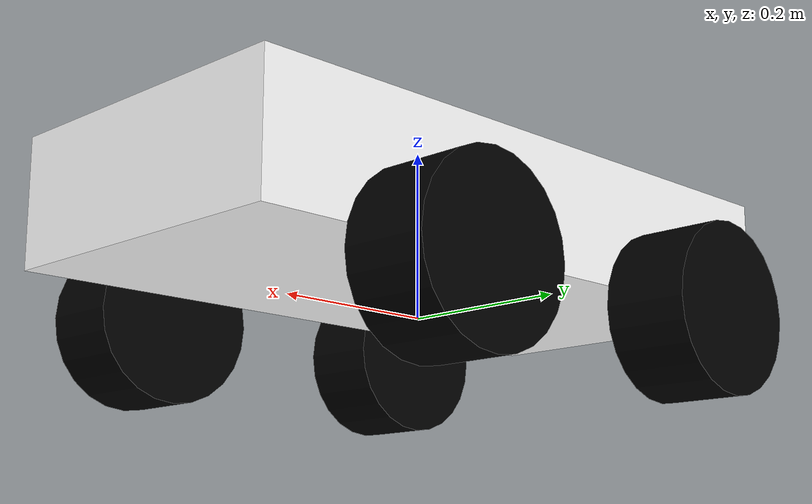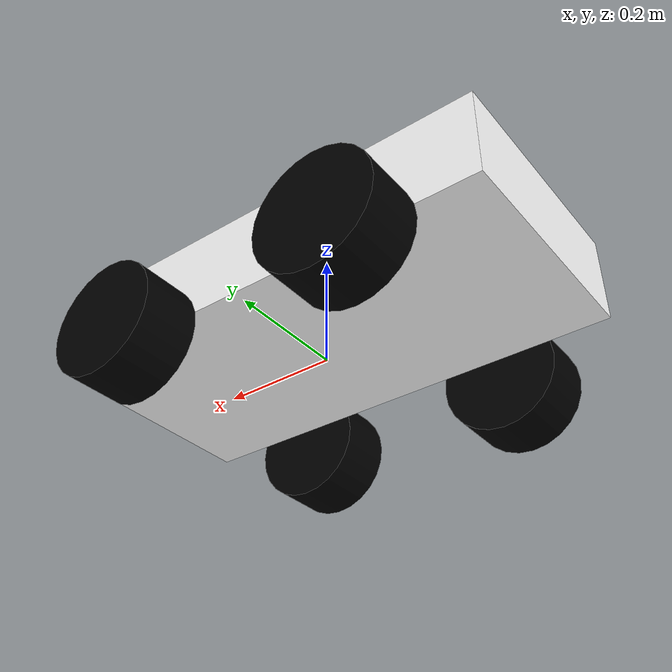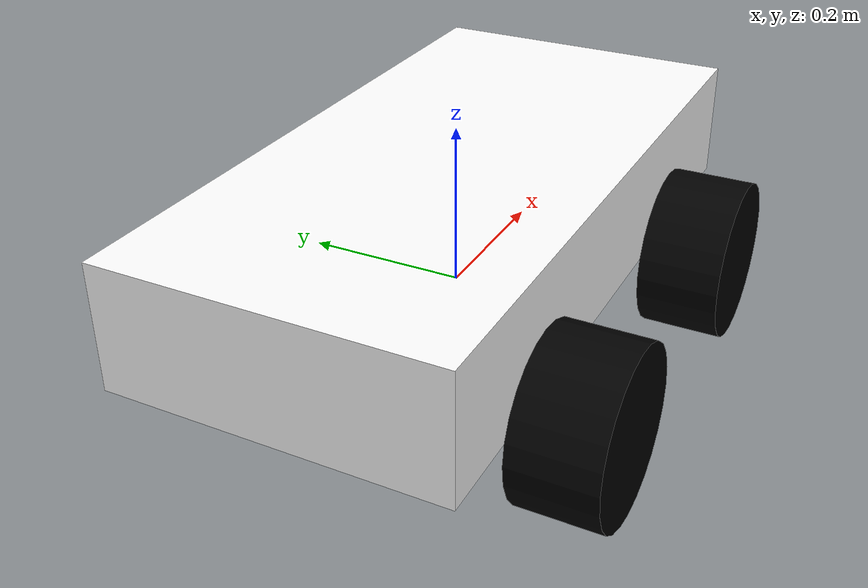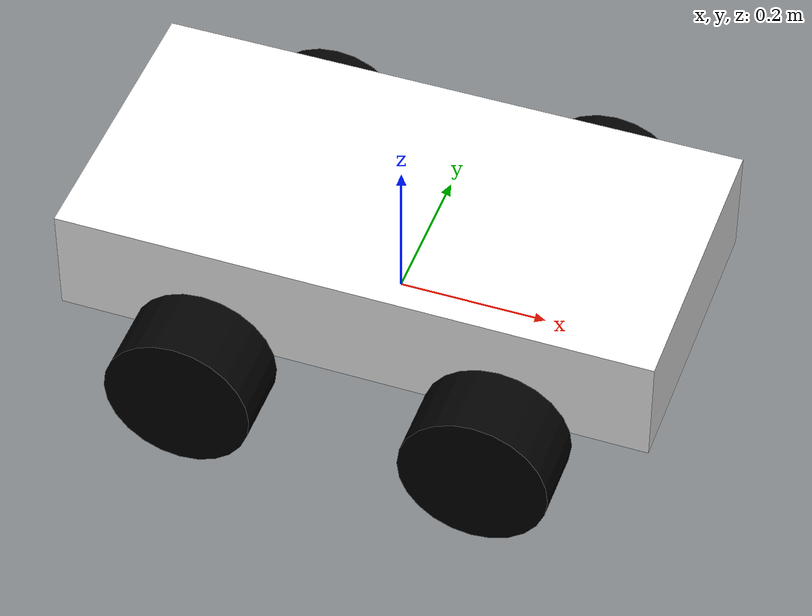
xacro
<?xml version="1.0"?>
<robot xmlns:xacro="http://www.ros.org/wiki/xacro">

	<xacro:include filename="inertial_macros.xacro"/>

	<material name="white">
		<color rgba="1 1 1 1"/>
	</material>

	<material name="black">
		<color rgba="0 0 0 1"/>
	</material>

	<!-- BASE LINK -->
	<link name="base_link">
	</link>

	<!-- CHASSIS -->
	<joint name="chassis_joint" type="fixed">
		<parent link="base_link"/>
		<child link="chassis_link"/>
		<origin xyz="0 0 0"/>
	</joint>

	<link name="chassis_link">
		<visual>
			<origin xyz="0 0 0.1"/>
			<geometry>
				<box size="0.8 0.4 0.15"/>
			</geometry>
			<material name="white"/>
		</visual>

		<collision>
			<origin xyz="0 0 0.1"/>
			<geometry>
				<box size="0.8 0.4 0.05"/>
			</geometry>
		</collision>

		<!-- Reduced mass further for faster turning -->
		<xacro:inertial_box mass="0.5" x="0.8" y="0.4" z="0.05">
        	<origin xyz="0 0 0.1" rpy="0 0 0"/>
        </xacro:inertial_box>
	</link>

	<gazebo reference="chassis">
		<material>Gazebo/White</material>
	</gazebo>

	<!-- WHEEL1 -->
	<joint name="wheel1_joint" type="continuous">
    	<parent link="base_link"/>
    	<child link="wheel1_link"/>
    	<origin xyz="0.2 0.25 0" rpy="${-pi/2} 0 0"/>
    	<axis xyz="0 0 1"/>
    	<limit effort="20000" velocity="5000" />
    	<dynamics damping="0.01" friction="0.01" />
	</joint>

	<link name="wheel1_link">
		<visual>
			<geometry>
				<cylinder radius="0.1" length="0.1"/>
			</geometry>
			<material name="black"/>
		</visual>

		<collision>
			<geometry>
				<cylinder radius="0.1" length="0.1"/>
			</geometry>
		</collision>

		<!-- Reduced wheel mass even more -->
		<xacro:inertial_cylinder mass="0.03" length="0.1" radius="0.1">
        	<origin xyz="0 0 0" rpy="0 0 0"/>
        </xacro:inertial_cylinder>
	</link>

	<gazebo reference="wheel1_link">
		<material>Gazebo/Black</material>
	</gazebo>

	<!-- WHEEL2 -->
	<joint name="wheel2_joint" type="continuous">
    	<parent link="base_link"/>
    	<child link="wheel2_link"/>
    	<origin xyz="0.2 -0.25 0" rpy="${pi/2} 0 0"/>
    	<axis xyz="0 0 -1"/>
    	<limit effort="20000" velocity="5000" />
    	<dynamics damping="0.01" friction="0.01" />
	</joint>

	<link name="wheel2_link">
		<visual>
			<geometry>
				<cylinder radius="0.1" length="0.1"/>
			</geometry>
			<material name="black"/>
		</visual>

		<collision>
			<geometry>
				<cylinder radius="0.1" length="0.1"/>
			</geometry>
		</collision>

		<xacro:inertial_cylinder mass="0.03" length="0.1" radius="0.1">
        	<origin xyz="0 0 0" rpy="0 0 0"/>
        </xacro:inertial_cylinder>
	</link>

	<gazebo reference="wheel2_link">
		<material>Gazebo/Black</material>
	</gazebo>

	<!-- WHEEL3 -->
	<joint name="wheel3_joint" type="continuous">
    	<parent link="base_link"/>
    	<child link="wheel3_link"/>
    	<origin xyz="-0.2 0.25 0" rpy="${-pi/2} 0 0"/>
    	<axis xyz="0 0 1"/>
    	<limit effort="20000" velocity="5000" />
    	<dynamics damping="0.01" friction="0.01" />
	</joint>

	<link name="wheel3_link">
		<visual>
			<geometry>
				<cylinder radius="0.1" length="0.1"/>
			</geometry>
			<material name="black"/>
		</visual>

		<collision>
			<geometry>
				<cylinder radius="0.1" length="0.1"/>
			</geometry>
		</collision>

		<xacro:inertial_cylinder mass="0.03" length="0.1" radius="0.1">
        	<origin xyz="0 0 0" rpy="0 0 0"/>
        </xacro:inertial_cylinder>
	</link>

	<gazebo reference="wheel3_link">
		<material>Gazebo/Black</material>
	</gazebo>

	<!-- WHEEL4 -->
	<joint name="wheel4_joint" type="continuous">
    	<parent link="base_link"/>
    	<child link="wheel4_link"/>
    	<origin xyz="-0.2 -0.25 0" rpy="${pi/2} 0 0"/>
    	<axis xyz="0 0 -1"/>
    	<limit effort="20000" velocity="5000" />
    	<dynamics damping="0.01" friction="0.01" />
	</joint>

	<link name="wheel4_link">
		<visual>
			<geometry>
				<cylinder radius="0.1" length="0.1"/>
			</geometry>
			<material name="black"/>
		</visual>

		<collision>
			<geometry>
				<cylinder radius="0.1" length="0.1"/>
			</geometry>
		</collision>

		<xacro:inertial_cylinder mass="0.03" length="0.1" radius="0.1">
        	<origin xyz="0 0 0" rpy="0 0 0"/>
        </xacro:inertial_cylinder>
	</link>

	<gazebo reference="wheel4_link">
		<material>Gazebo/Black</material>
	</gazebo>
</robot>
